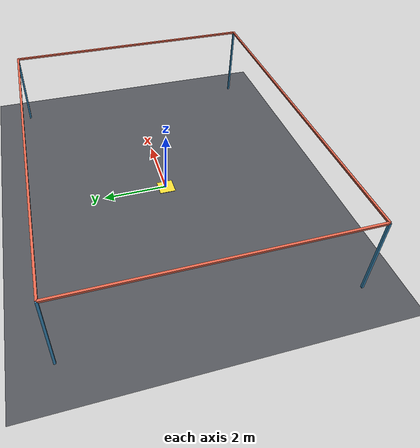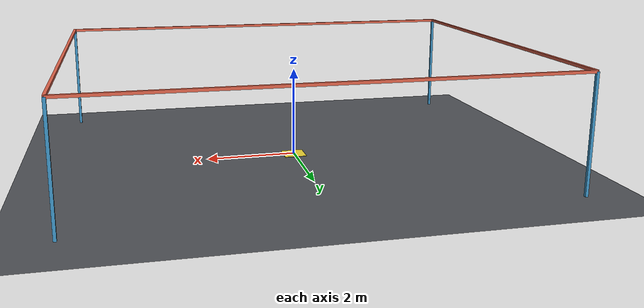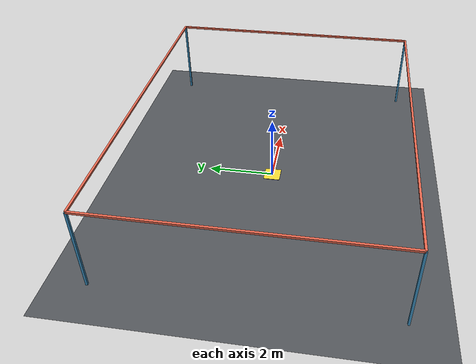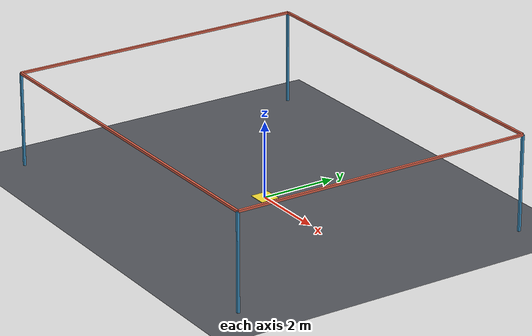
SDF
<?xml version="1.0" ?>
<sdf version="1.9">
  <world name="autonomy_park">

    <physics type="ode">
      <max_step_size>0.004</max_step_size>
      <real_time_factor>1.0</real_time_factor>
    </physics>

    <plugin filename="gz-sim-physics-system" name="gz::sim::systems::Physics"/>
    <plugin filename="gz-sim-user-commands-system" name="gz::sim::systems::UserCommands"/>
    <plugin filename="gz-sim-scene-broadcaster-system" name="gz::sim::systems::SceneBroadcaster"/>
    <plugin filename="gz-sim-contact-system" name="gz::sim::systems::Contact"/>
    <plugin filename="gz-sim-imu-system" name="gz::sim::systems::Imu"/>
    <plugin filename="gz-sim-air-pressure-system" name="gz::sim::systems::AirPressure"/>
    <plugin filename="gz-sim-navsat-system" name="gz::sim::systems::NavSat"/>
    <plugin filename="gz-sim-apply-link-wrench-system" name="gz::sim::systems::ApplyLinkWrench"/>
    <plugin filename="gz-sim-sensors-system" name="gz::sim::systems::Sensors">
      <render_engine>ogre2</render_engine>
    </plugin>

    <gravity>0 0 -9.8066</gravity>
    <magnetic_field>6.0e-06 2.3e-05 -4.2e-05</magnetic_field>
    <atmosphere type="adiabatic"/>

    <spherical_coordinates>
      <surface_model>EARTH_WGS84</surface_model>
      <world_frame_orientation>ENU</world_frame_orientation>
      <latitude_deg>29.643946</latitude_deg>
      <longitude_deg>-82.355659</longitude_deg>
      <elevation>34.0</elevation>
    </spherical_coordinates>

    <scene>
      <grid>false</grid>
      <ambient>0.55 0.57 0.60 1</ambient>
      <background>0.30 0.33 0.38 1</background>
      <shadows>false</shadows>
    </scene>

    <light type="directional" name="sun">
      <cast_shadows>true</cast_shadows>
      <pose>0 0 10 0 0 0</pose>
      <diffuse>0.9 0.9 0.9 1</diffuse>
      <specular>0.25 0.25 0.25 1</specular>
      <direction>-0.4 0.3 -0.9</direction>
    </light>

    <model name="ground_plane">
      <static>true</static>
      <link name="link">
        <collision name="collision">
          <pose>0 0 -10 0 0 0</pose>
          <geometry><box><size>120 120 20</size></box></geometry>
          <surface>
            <friction><ode><mu>1.0</mu><mu2>1.0</mu2></ode></friction>
          </surface>
        </collision>
        <visual name="visual">
          <geometry><plane><normal>0 0 1</normal><size>100 100</size></plane></geometry>
          <material>
            <ambient>0.24 0.25 0.27 1</ambient>
            <diffuse>0.32 0.33 0.35 1</diffuse>
            <specular>0.05 0.05 0.05 1</specular>
          </material>
        </visual>
      </link>
    </model>

    <!-- Mocap volume markers. Visual only: 10 m x 8 m footprint, 2.5 m ceiling. -->
    <model name="mocap_volume">
      <static>true</static>
      <link name="link">

        <visual name="post_ne">
          <pose>5 4 1.25 0 0 0</pose>
          <geometry><box><size>0.06 0.06 2.5</size></box></geometry>
          <material><ambient>0.20 0.55 0.75 1</ambient><diffuse>0.25 0.6 0.8 1</diffuse></material>
        </visual>
        <visual name="post_nw">
          <pose>-5 4 1.25 0 0 0</pose>
          <geometry><box><size>0.06 0.06 2.5</size></box></geometry>
          <material><ambient>0.20 0.55 0.75 1</ambient><diffuse>0.25 0.6 0.8 1</diffuse></material>
        </visual>
        <visual name="post_se">
          <pose>5 -4 1.25 0 0 0</pose>
          <geometry><box><size>0.06 0.06 2.5</size></box></geometry>
          <material><ambient>0.20 0.55 0.75 1</ambient><diffuse>0.25 0.6 0.8 1</diffuse></material>
        </visual>
        <visual name="post_sw">
          <pose>-5 -4 1.25 0 0 0</pose>
          <geometry><box><size>0.06 0.06 2.5</size></box></geometry>
          <material><ambient>0.20 0.55 0.75 1</ambient><diffuse>0.25 0.6 0.8 1</diffuse></material>
        </visual>

        <!-- Top rails at the Astro SOP ceiling height (2.5 m). -->
        <visual name="rail_north">
          <pose>0 4 2.5 0 0 0</pose>
          <geometry><box><size>10 0.06 0.06</size></box></geometry>
          <material><ambient>0.85 0.35 0.25 1</ambient><diffuse>0.9 0.4 0.3 1</diffuse></material>
        </visual>
        <visual name="rail_south">
          <pose>0 -4 2.5 0 0 0</pose>
          <geometry><box><size>10 0.06 0.06</size></box></geometry>
          <material><ambient>0.85 0.35 0.25 1</ambient><diffuse>0.9 0.4 0.3 1</diffuse></material>
        </visual>
        <visual name="rail_east">
          <pose>5 0 2.5 0 0 0</pose>
          <geometry><box><size>0.06 8 0.06</size></box></geometry>
          <material><ambient>0.85 0.35 0.25 1</ambient><diffuse>0.9 0.4 0.3 1</diffuse></material>
        </visual>
        <visual name="rail_west">
          <pose>-5 0 2.5 0 0 0</pose>
          <geometry><box><size>0.06 8 0.06</size></box></geometry>
          <material><ambient>0.85 0.35 0.25 1</ambient><diffuse>0.9 0.4 0.3 1</diffuse></material>
        </visual>

        <!-- Origin marker: where the OptiTrack calibration square goes. -->
        <visual name="origin_marker">
          <pose>0 0 0.005 0 0 0</pose>
          <geometry><box><size>0.5 0.5 0.01</size></box></geometry>
          <material><ambient>0.95 0.85 0.20 1</ambient><diffuse>0.95 0.85 0.20 1</diffuse></material>
        </visual>

      </link>
    </model>

  </world>
</sdf>
